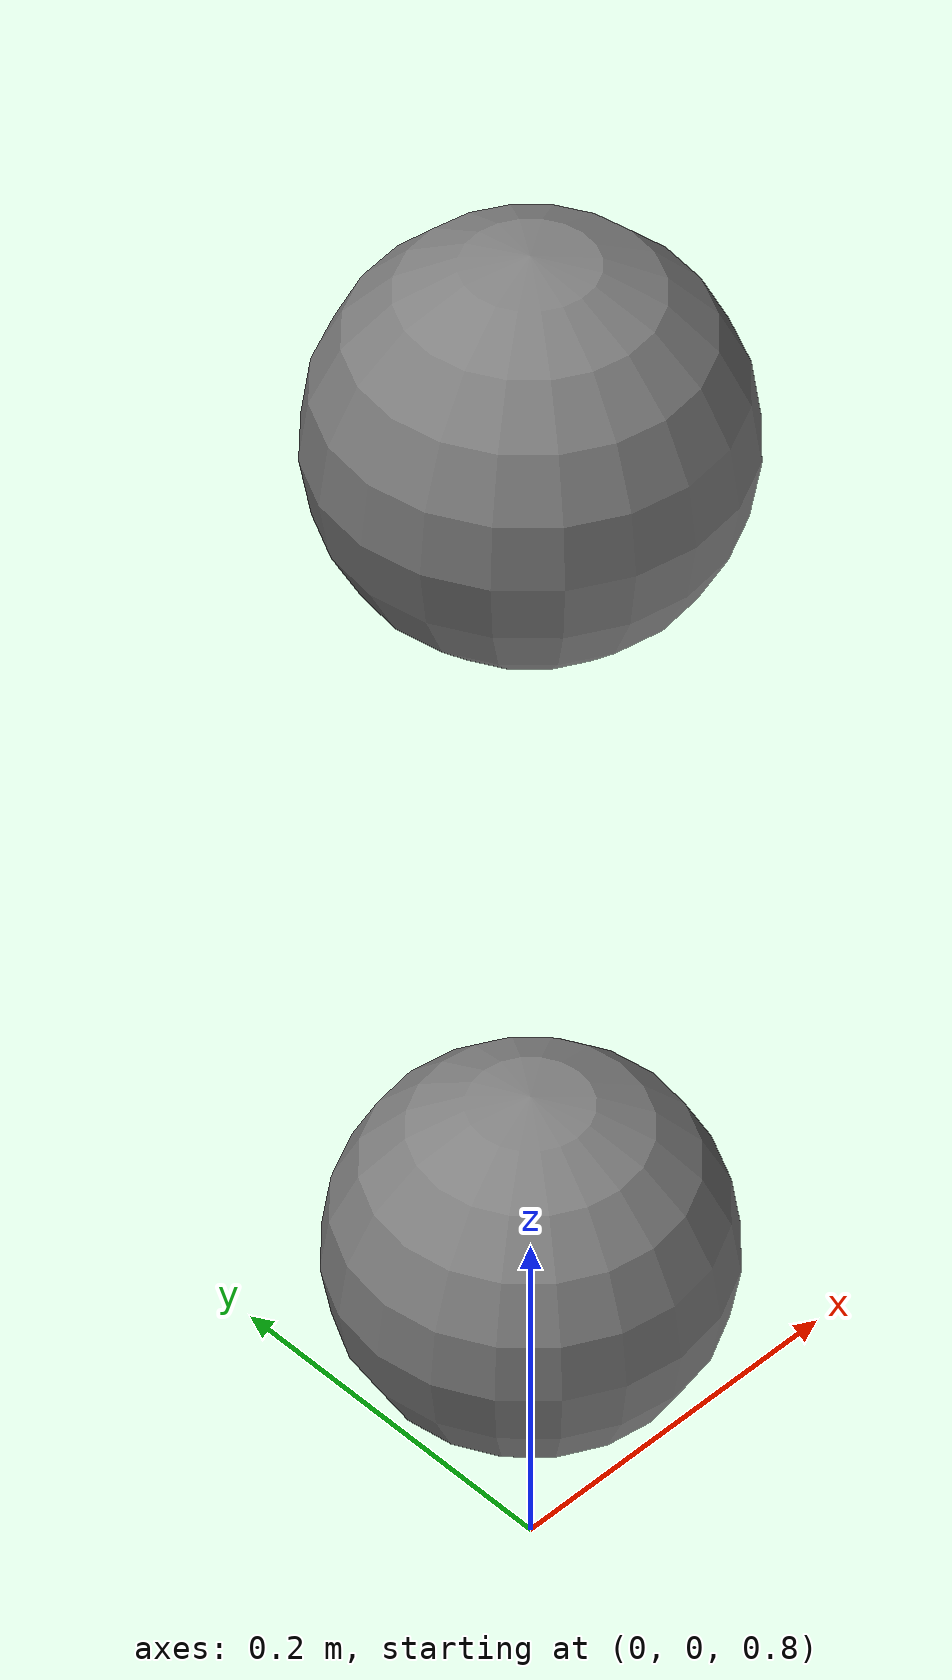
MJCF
<mujoco>
      <option gravity="0 0 -9.81" timestep="0.002"/>
      <worldbody>
        <geom type="plane" size="10 10 0.1"/>
        <body name="a" pos="0 0 1">
          <freejoint/>
          <geom type="sphere" size="0.1" mass="1.0"/>
        </body>
        <body name="b" pos="0 0 1.5">
          <freejoint/>
          <geom type="sphere" size="0.1" mass="1.0"/>
        </body>
      </worldbody>
      <equality>
        <weld body1="a" body2="b"/>
      </equality>
    </mujoco>
